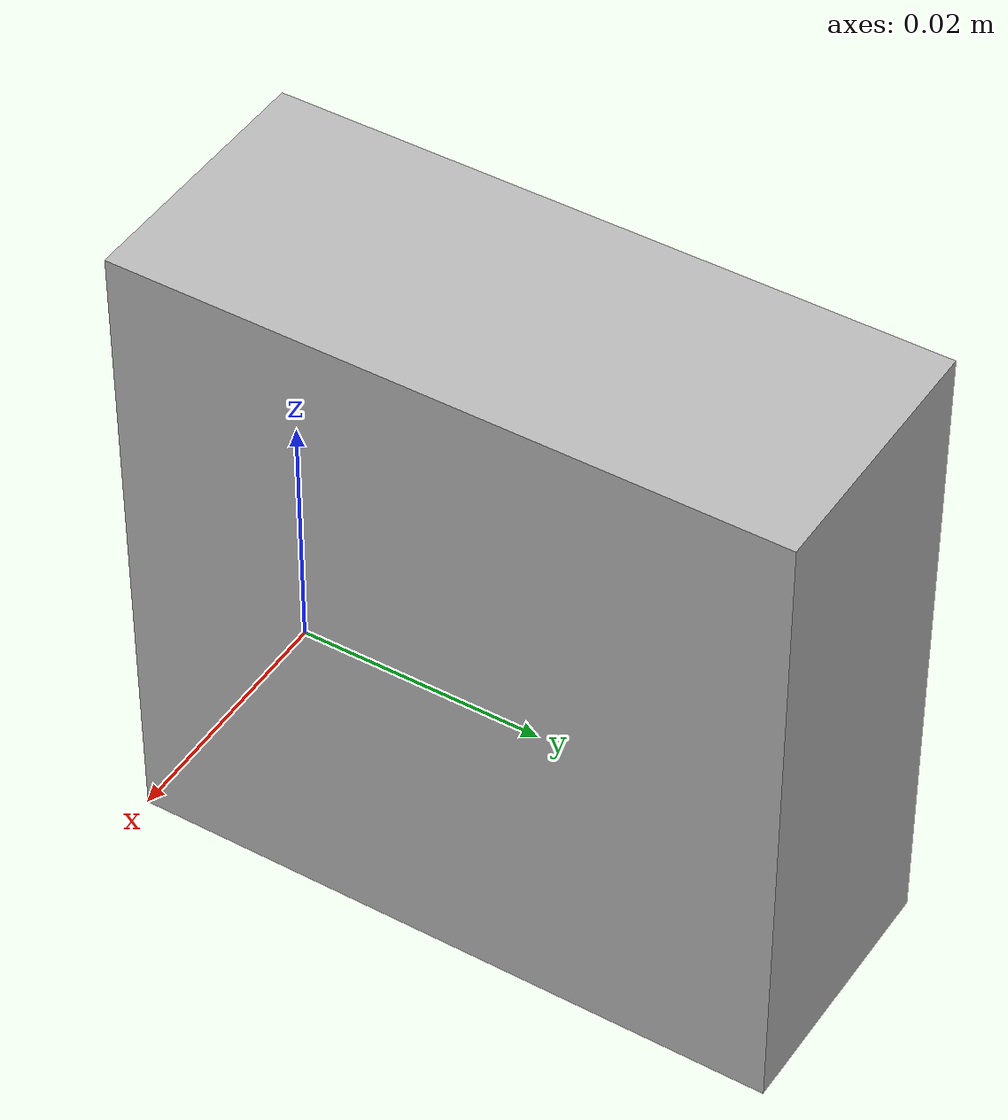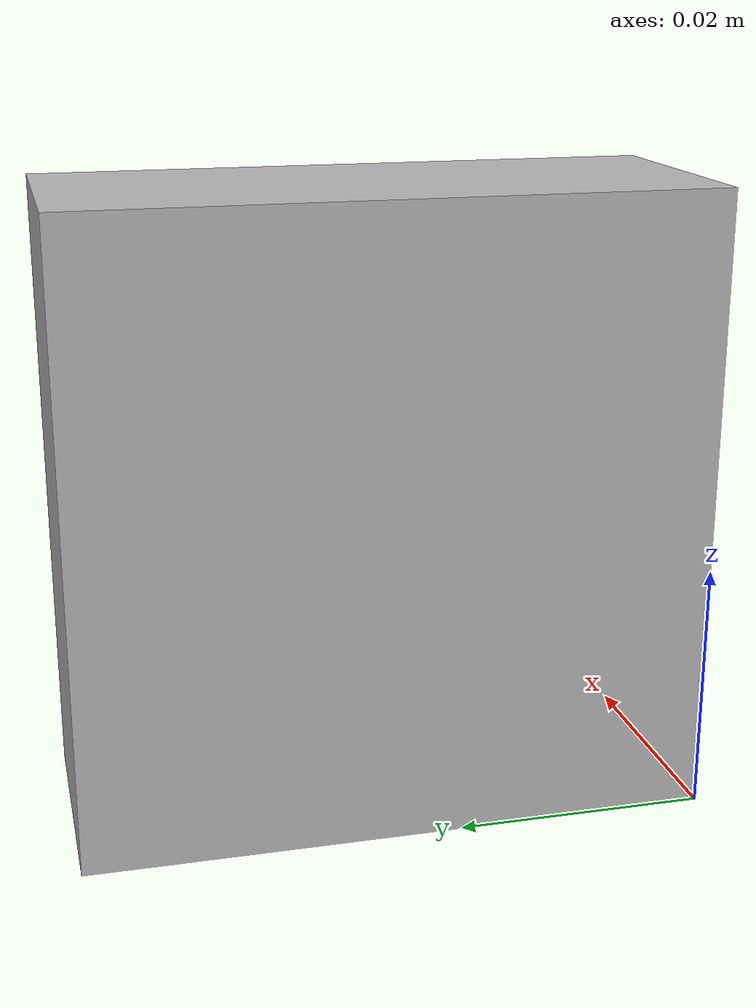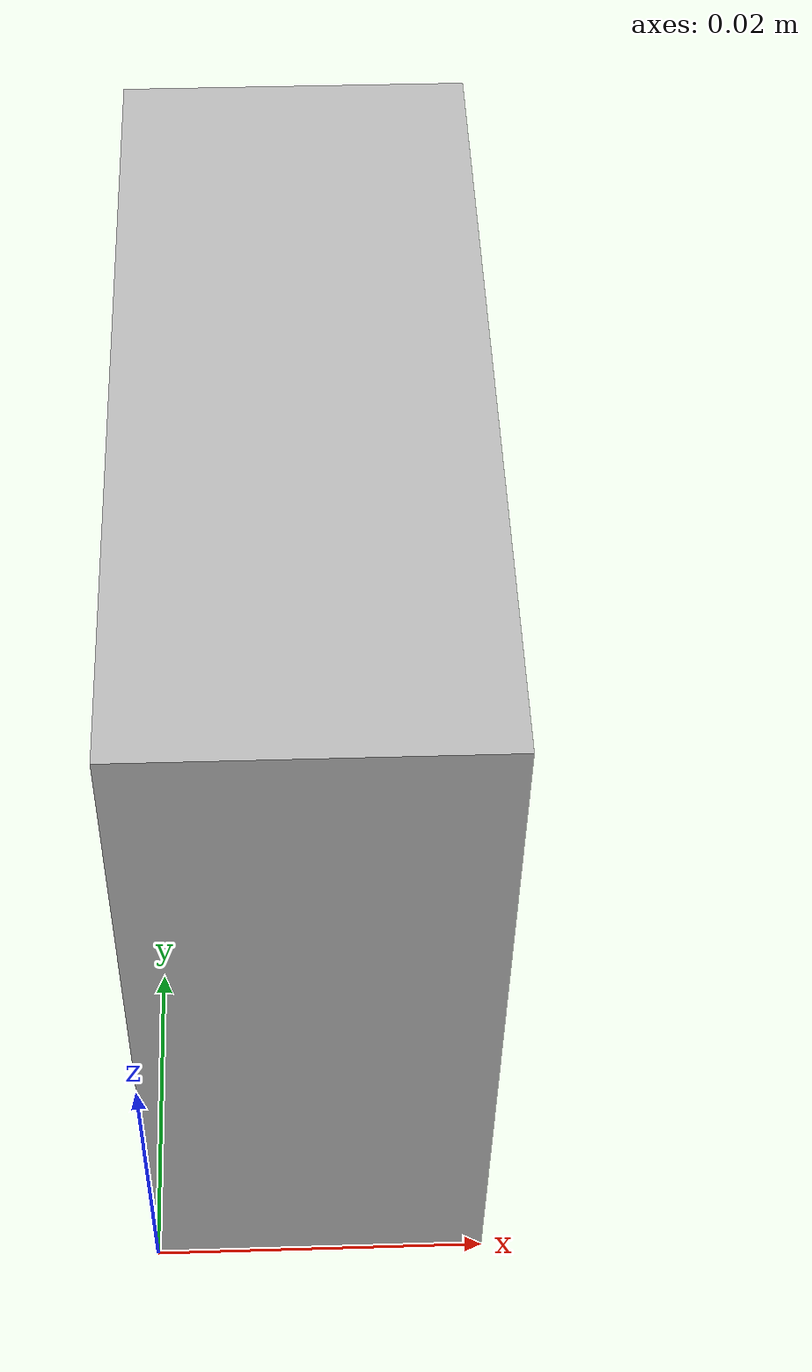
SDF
<?xml version="1.0" ?>
<sdf version="1.6">
  <model name="camera">
    <link name="base_link">
     <pose>0.01 0.025 0.025 0 -0 0</pose>
      <inertial>
        <mass>0.01</mass>
        <inertia>
          <ixx>4.15e-6</ixx>
          <ixy>0</ixy>
          <ixz>0</ixz>
          <iyy>2.407e-6</iyy>
          <iyz>0</iyz>
          <izz>2.407e-6</izz>
        </inertia>
      </inertial>
      <visual name="visual">
        <geometry>
          <box>
            <size>0.02 0.05 0.05</size>
          </box>
        </geometry>
      </visual>

      <!--752x480 MT9V034 image sensor, only 64x64 pixels used-->
      <sensor name="PX4Flow" type="camera">
        <pose>0.01 0.025 0.025 0 -0 0</pose>

        <camera>
          <horizontal_fov>0.088</horizontal_fov>
          <image>
            <width>64</width>
            <height>64</height>
            <format>L8</format>
          </image>
          <clip>
            <near>0.1</near>
            <far>100</far>
          </clip>
          <noise>
            <type>gaussian</type>
            <mean>0.0</mean>
            <stddev>0.001</stddev>
          </noise>
        </camera>
        <plugin name="opticalflow_plugin" filename="libgazebo_opticalFlow_plugin.so"/>
	<robotNamespace>px4flow</robotNamespace>
        <always_on>true</always_on>
        <update_rate>100.0</update_rate>
        <visualize>true</visualize>
        <topic>/px4flow</topic>

      </sensor>
    </link>
  </model>
</sdf>
<!-- vim: set et fenc=utf-8 ff=unix sts=0 sw=4 ts=4 : -->
